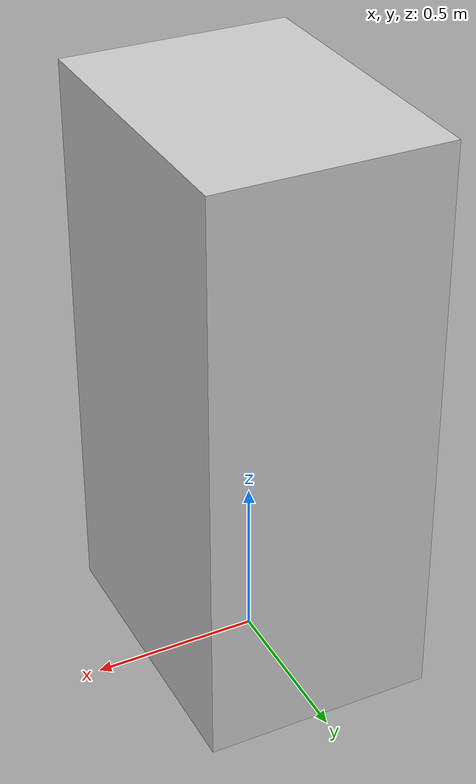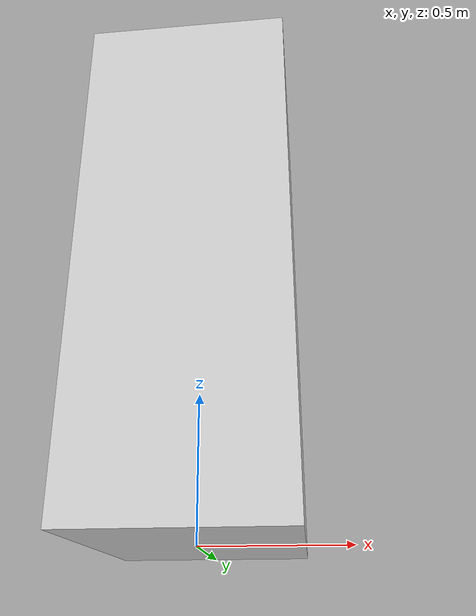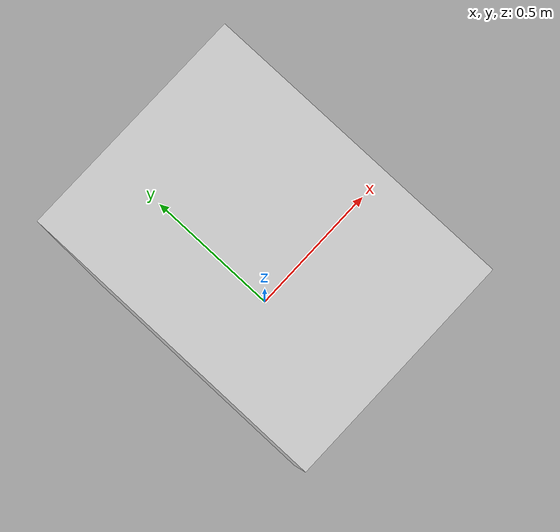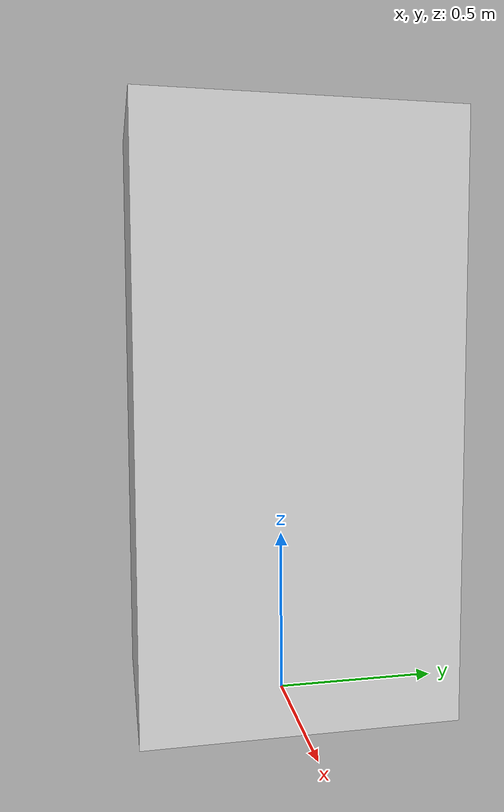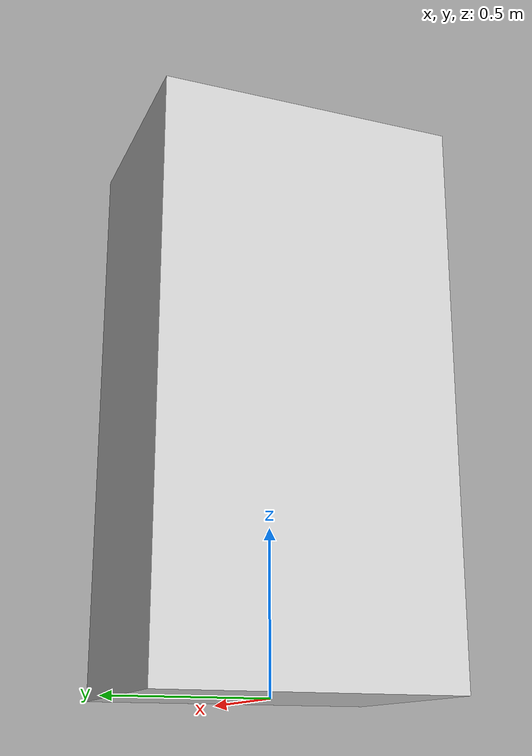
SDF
<?xml version="1.0"?>
<sdf version="1.6">
  <model name="rwc2013/fridge">
    <link name="1_link">
      <collision name="1_col">
        <geometry>
          <box>
            <size>0.69 0.92 1.75</size>
          </box>
        </geometry>
      </collision>
      <visual name="1_vis">
        <geometry>
          <box>
            <size>0.69 0.92 1.75</size>
          </box>
        </geometry>
        <material>
          <ambient>0.8 0.8 0.8 1</ambient>
        </material>
      </visual>
      <pose>0.0 0.0 0.875 0 0 0</pose>
    </link>
    <static>true</static>
  </model>
</sdf>
